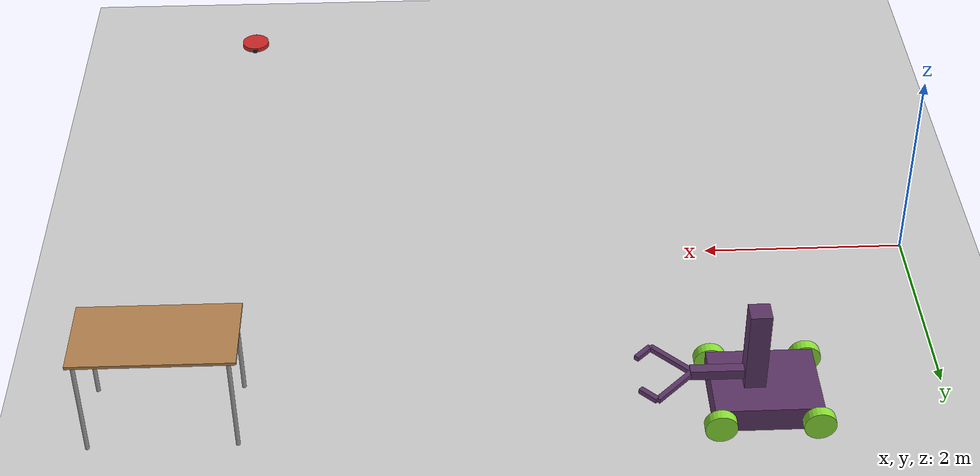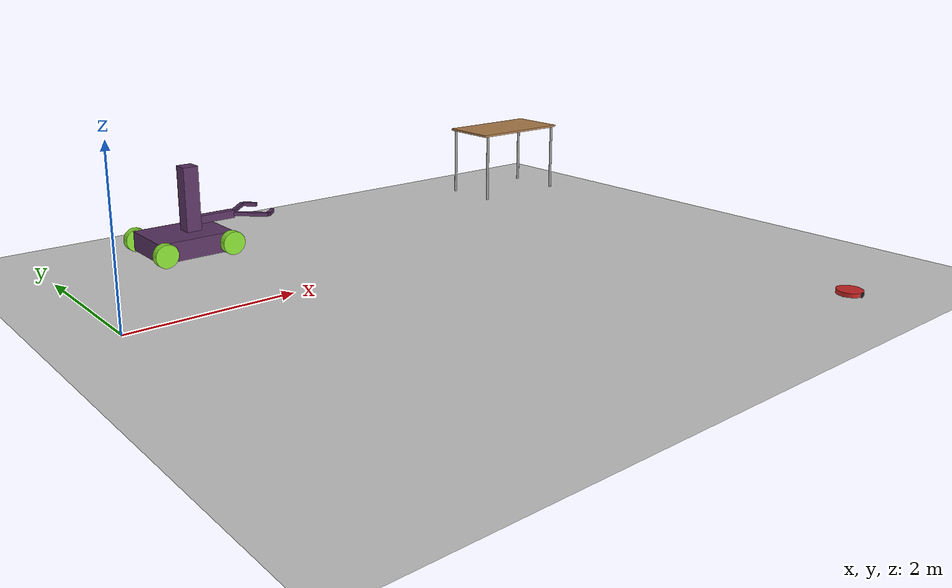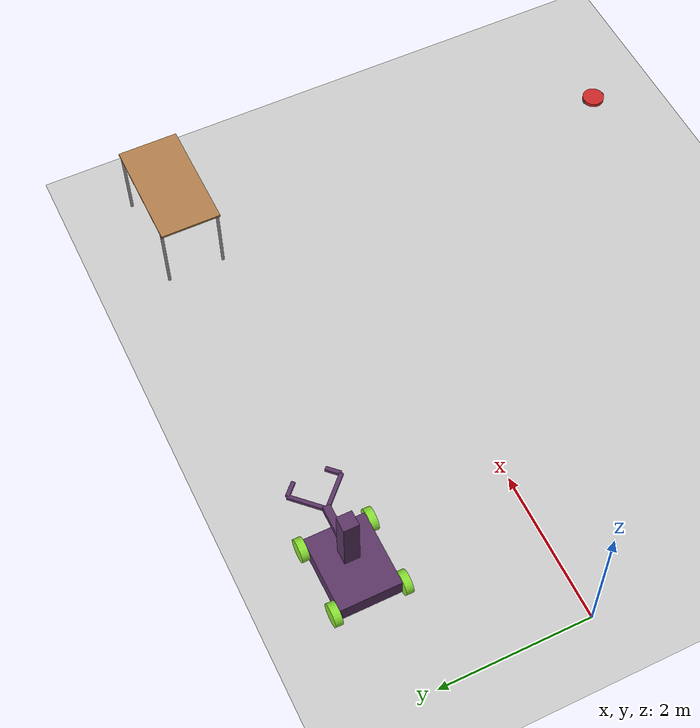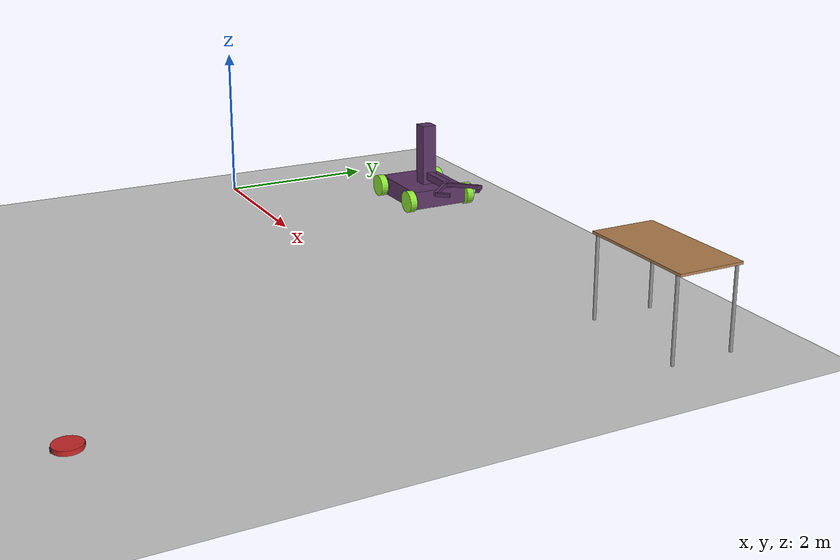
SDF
<sdf version="1.7">
 <world name="default">
  <model name="ground_plane">
   <static>1</static>
   <link name="ground_link">
    <collision name="collision">
     <geometry><plane><normal>0 0 1</normal><size>100 100</size></plane></geometry>
     <surface><friction><ode><mu>100</mu><mu2>50</mu2></ode></friction></surface>
    </collision>
    <visual name="visual">
     <cast_shadows>0</cast_shadows>
     <geometry><plane><normal>0 0 1</normal><size>100 100</size></plane></geometry>
     <material>
      <script><uri>file://media/materials/scripts/gazebo.material</uri><name>Gazebo/Grey</name></script>
     </material>
    </visual>
   </link>
  </model>
  <model name="CleanerBot">
   <link name="link_0">
    <inertial>
     <mass>1</mass>
     <inertia><ixx>0.145833</ixx><ixy>0</ixy><ixz>0</ixz><iyy>0.145833</iyy><iyz>0</iyz><izz>0.125</izz></inertia>
    </inertial>
    <pose>0 0 0.012 0 -0 0</pose>
    <visual name="visual">
     <geometry><cylinder><radius>0.15</radius><length>0.05</length></cylinder></geometry>
     <material>
      <lighting>1</lighting>
      <script><uri>file://media/materials/scripts/gazebo.material</uri><name>Gazebo/Red</name></script>
      <shader type="pixel"><normal_map>__default__</normal_map></shader>
      <ambient>0.8 0 0 1</ambient>
      <diffuse>0.7 0.7 0.7 1</diffuse>
      <specular>0.01 0.01 0.01 1</specular>
      <emissive>0 0 0 1</emissive>
     </material>
    </visual>
    <collision name="collision">
     <geometry><cylinder><radius>0.15</radius><length>0.05</length></cylinder></geometry>
     <surface>
      <friction>
       <ode><mu>1</mu><mu2>1</mu2><fdir1>0 0 0</fdir1><slip1>0</slip1><slip2>0</slip2></ode>
       <torsional>
        <coefficient>1</coefficient>
        <patch_radius>0</patch_radius>
        <surface_radius>0</surface_radius>
        <use_patch_radius>1</use_patch_radius>
        <ode><slip>0</slip></ode>
       </torsional>
      </friction>
      <bounce><restitution_coefficient>0</restitution_coefficient><threshold>1e+06</threshold></bounce>
      <contact>
       <collide_without_contact>0</collide_without_contact>
       <collide_without_contact_bitmask>1</collide_without_contact_bitmask>
       <collide_bitmask>1</collide_bitmask>
       <ode>
        <soft_cfm>0</soft_cfm>
        <soft_erp>0.2</soft_erp>
        <kp>1e+13</kp>
        <kd>1</kd>
        <max_vel>0.01</max_vel>
        <min_depth>0</min_depth>
       </ode>
       <bullet>
        <split_impulse>1</split_impulse>
        <split_impulse_penetration_threshold>-0.01</split_impulse_penetration_threshold>
        <soft_cfm>0</soft_cfm>
        <soft_erp>0.2</soft_erp>
        <kp>1e+13</kp>
        <kd>1</kd>
       </bullet>
      </contact>
     </surface>
    </collision>
   </link>
   <link name="link_1">
    <inertial>
     <mass>1</mass>
     <inertia><ixx>0.145833</ixx><ixy>0</ixy><ixz>0</ixz><iyy>0.145833</iyy><iyz>0</iyz><izz>0.125</izz></inertia>
    </inertial>
    <pose>0 0.15 0.007 1.5707 -0 0</pose>
    <visual name="visual">
     <geometry><cylinder><radius>0.03</radius><length>0.01</length></cylinder></geometry>
     <material>
      <lighting>1</lighting>
      <script><uri>file://media/materials/scripts/gazebo.material</uri><name>Gazebo/Black</name></script>
      <shader type="pixel"><normal_map>__default__</normal_map></shader>
      <ambient>0 0 0.8 1</ambient>
      <diffuse>0.7 0.7 0.7 1</diffuse>
      <specular>0.01 0.01 0.01 1</specular>
      <emissive>0 0 0 1</emissive>
     </material>
    </visual>
    <collision name="collision">
     <geometry><cylinder><radius>0.03</radius><length>0.01</length></cylinder></geometry>
     <surface>
      <friction>
       <ode><mu>1</mu><mu2>1</mu2><fdir1>0 0 0</fdir1><slip1>0</slip1><slip2>0</slip2></ode>
       <torsional>
        <coefficient>1</coefficient>
        <patch_radius>0</patch_radius>
        <surface_radius>0</surface_radius>
        <use_patch_radius>1</use_patch_radius>
        <ode><slip>0</slip></ode>
       </torsional>
      </friction>
      <bounce><restitution_coefficient>0</restitution_coefficient><threshold>1e+06</threshold></bounce>
      <contact>
       <collide_without_contact>0</collide_without_contact>
       <collide_without_contact_bitmask>1</collide_without_contact_bitmask>
       <collide_bitmask>1</collide_bitmask>
       <ode>
        <soft_cfm>0</soft_cfm>
        <soft_erp>0.2</soft_erp>
        <kp>1e+13</kp>
        <kd>1</kd>
        <max_vel>0.01</max_vel>
        <min_depth>0</min_depth>
       </ode>
       <bullet>
        <split_impulse>1</split_impulse>
        <split_impulse_penetration_threshold>-0.01</split_impulse_penetration_threshold>
        <soft_cfm>0</soft_cfm>
        <soft_erp>0.2</soft_erp>
        <kp>1e+13</kp>
        <kd>1</kd>
       </bullet>
      </contact>
     </surface>
    </collision>
   </link>
   <link name="link_1_clone">
    <inertial>
     <mass>1</mass>
     <inertia><ixx>0.145833</ixx><ixy>0</ixy><ixz>0</ixz><iyy>0.145833</iyy><iyz>0</iyz><izz>0.125</izz></inertia>
    </inertial>
    <pose>0 -0.15 0.007 1.5707 -0 0</pose>
    <visual name="visual">
     <geometry><cylinder><radius>0.03</radius><length>0.01</length></cylinder></geometry>
     <material>
      <lighting>1</lighting>
      <script><uri>file://media/materials/scripts/gazebo.material</uri><name>Gazebo/Black</name></script>
      <shader type="pixel"><normal_map>__default__</normal_map></shader>
      <ambient>0 0 0.8 1</ambient>
      <diffuse>0.7 0.7 0.7 1</diffuse>
      <specular>0.01 0.01 0.01 1</specular>
      <emissive>0 0 0 1</emissive>
     </material>
    </visual>
    <collision name="collision">
     <geometry><cylinder><radius>0.03</radius><length>0.01</length></cylinder></geometry>
     <surface>
      <friction>
       <ode><mu>1</mu><mu2>1</mu2><fdir1>0 0 0</fdir1><slip1>0</slip1><slip2>0</slip2></ode>
       <torsional>
        <coefficient>1</coefficient>
        <patch_radius>0</patch_radius>
        <surface_radius>0</surface_radius>
        <use_patch_radius>1</use_patch_radius>
        <ode><slip>0</slip></ode>
       </torsional>
      </friction>
      <bounce><restitution_coefficient>0</restitution_coefficient><threshold>1e+06</threshold></bounce>
      <contact>
       <collide_without_contact>0</collide_without_contact>
       <collide_without_contact_bitmask>1</collide_without_contact_bitmask>
       <collide_bitmask>1</collide_bitmask>
       <ode>
        <soft_cfm>0</soft_cfm>
        <soft_erp>0.2</soft_erp>
        <kp>1e+13</kp>
        <kd>1</kd>
        <max_vel>0.01</max_vel>
        <min_depth>0</min_depth>
       </ode>
       <bullet>
        <split_impulse>1</split_impulse>
        <split_impulse_penetration_threshold>-0.01</split_impulse_penetration_threshold>
        <soft_cfm>0</soft_cfm>
        <soft_erp>0.2</soft_erp>
        <kp>1e+13</kp>
        <kd>1</kd>
       </bullet>
      </contact>
     </surface>
    </collision>
   </link>
   <link name="link_2">
    <inertial>
     <mass>1</mass>
     <inertia><ixx>0.1</ixx><ixy>0</ixy><ixz>0</ixz><iyy>0.1</iyy><iyz>0</iyz><izz>0.1</izz></inertia>
    </inertial>
    <pose>0.13 0 -0.013 0 -0 0</pose>
    <visual name="visual">
     <geometry><sphere><radius>0.01</radius></sphere></geometry>
     <material>
      <lighting>1</lighting>
      <script><uri>file://media/materials/scripts/gazebo.material</uri><name>Gazebo/Grey</name></script>
      <shader type="pixel"><normal_map>__default__</normal_map></shader>
      <ambient>0.3 0.3 0.3 1</ambient>
      <diffuse>0.7 0.7 0.7 1</diffuse>
      <specular>0.01 0.01 0.01 1</specular>
      <emissive>0 0 0 1</emissive>
     </material>
    </visual>
    <collision name="collision">
     <geometry><sphere><radius>0.01</radius></sphere></geometry>
     <surface>
      <friction>
       <ode><mu>0</mu><mu2>0</mu2><fdir1>0 0 0</fdir1><slip1>0</slip1><slip2>0</slip2></ode>
       <torsional>
        <coefficient>1</coefficient>
        <patch_radius>0</patch_radius>
        <surface_radius>0</surface_radius>
        <use_patch_radius>1</use_patch_radius>
        <ode><slip>0</slip></ode>
       </torsional>
      </friction>
      <bounce><restitution_coefficient>0</restitution_coefficient><threshold>1e+06</threshold></bounce>
      <contact>
       <collide_without_contact>0</collide_without_contact>
       <collide_without_contact_bitmask>1</collide_without_contact_bitmask>
       <collide_bitmask>1</collide_bitmask>
       <ode>
        <soft_cfm>0</soft_cfm>
        <soft_erp>0.2</soft_erp>
        <kp>1e+13</kp>
        <kd>1</kd>
        <max_vel>0.01</max_vel>
        <min_depth>0</min_depth>
       </ode>
       <bullet>
        <split_impulse>1</split_impulse>
        <split_impulse_penetration_threshold>-0.01</split_impulse_penetration_threshold>
        <soft_cfm>0</soft_cfm>
        <soft_erp>0.2</soft_erp>
        <kp>1e+13</kp>
        <kd>1</kd>
       </bullet>
      </contact>
     </surface>
    </collision>
   </link>
   <link name="link_2_clone">
    <inertial>
     <mass>1</mass>
     <inertia><ixx>0.1</ixx><ixy>0</ixy><ixz>0</ixz><iyy>0.1</iyy><iyz>0</iyz><izz>0.1</izz></inertia>
    </inertial>
    <pose>-0.13 0 -0.013 0 -0 0</pose>
    <visual name="visual">
     <geometry><sphere><radius>0.01</radius></sphere></geometry>
     <material>
      <lighting>1</lighting>
      <script><uri>file://media/materials/scripts/gazebo.material</uri><name>Gazebo/Grey</name></script>
      <shader type="pixel"><normal_map>__default__</normal_map></shader>
      <ambient>0.3 0.3 0.3 1</ambient>
      <diffuse>0.7 0.7 0.7 1</diffuse>
      <specular>0.01 0.01 0.01 1</specular>
      <emissive>0 0 0 1</emissive>
     </material>
    </visual>
    <collision name="collision">
     <geometry><sphere><radius>0.01</radius></sphere></geometry>
     <surface>
      <friction>
       <ode><mu>0</mu><mu2>0</mu2><fdir1>0 0 0</fdir1><slip1>0</slip1><slip2>0</slip2></ode>
       <torsional>
        <coefficient>1</coefficient>
        <patch_radius>0</patch_radius>
        <surface_radius>0</surface_radius>
        <use_patch_radius>1</use_patch_radius>
        <ode><slip>0</slip></ode>
       </torsional>
      </friction>
      <bounce><restitution_coefficient>0</restitution_coefficient><threshold>1e+06</threshold></bounce>
      <contact>
       <collide_without_contact>0</collide_without_contact>
       <collide_without_contact_bitmask>1</collide_without_contact_bitmask>
       <collide_bitmask>1</collide_bitmask>
       <ode>
        <soft_cfm>0</soft_cfm>
        <soft_erp>0.2</soft_erp>
        <kp>1e+13</kp>
        <kd>1</kd>
        <max_vel>0.01</max_vel>
        <min_depth>0</min_depth>
       </ode>
       <bullet>
        <split_impulse>1</split_impulse>
        <split_impulse_penetration_threshold>-0.01</split_impulse_penetration_threshold>
        <soft_cfm>0</soft_cfm>
        <soft_erp>0.2</soft_erp>
        <kp>1e+13</kp>
        <kd>1</kd>
       </bullet>
      </contact>
     </surface>
    </collision>
   </link>
   <joint name="link_0_JOINT_1" type="revolute">
    <parent>link_0</parent>
    <child>link_1_clone</child>
    <axis>
     <xyz>0 0 1</xyz>
     <limit>
      <lower>-1.79769e+308</lower>
      <upper>1.79769e+308</upper>
      <effort>-1</effort>
      <velocity>-1</velocity>
     </limit>
     <dynamics>
      <spring_reference>0</spring_reference>
      <spring_stiffness>0</spring_stiffness>
      <damping>0</damping>
     </dynamics>
    </axis>
    <physics>
     <ode><limit><cfm>0</cfm><erp>0.2</erp></limit><suspension><cfm>0</cfm><erp>0.2</erp></suspension></ode>
    </physics>
   </joint>
   <joint name="link_0_JOINT_2" type="revolute">
    <parent>link_0</parent>
    <child>link_1</child>
    <axis>
     <xyz>0 0 1</xyz>
     <limit>
      <lower>-1.79769e+308</lower>
      <upper>1.79769e+308</upper>
      <effort>-1</effort>
      <velocity>-1</velocity>
     </limit>
     <dynamics>
      <spring_reference>0</spring_reference>
      <spring_stiffness>0</spring_stiffness>
      <damping>0</damping>
     </dynamics>
    </axis>
    <physics>
     <ode><limit><cfm>0</cfm><erp>0.2</erp></limit><suspension><cfm>0</cfm><erp>0.2</erp></suspension></ode>
    </physics>
   </joint>
   <joint name="link_0_JOINT_4" type="fixed">
    <parent>link_0</parent>
    <child>link_2</child>
    <physics>
     <ode><limit><cfm>0</cfm><erp>0.2</erp></limit><suspension><cfm>0</cfm><erp>0.2</erp></suspension></ode>
    </physics>
   </joint>
   <joint name="link_0_JOINT_5" type="fixed">
    <parent>link_0</parent>
    <child>link_2_clone</child>
    <physics>
     <ode><limit><cfm>0</cfm><erp>0.2</erp></limit><suspension><cfm>0</cfm><erp>0.2</erp></suspension></ode>
    </physics>
   </joint>
   <static>0</static>
   <pose>6.82843 -3.99994 0.022999 9e-06 -2e-06 -0.003466</pose>
  </model>
  <model name="GripperBot_0">
   <link name="link_1">
    <inertial>
     <mass>20</mass>
     <inertia>
      <ixx>0.885417</ixx>
      <ixy>0</ixy>
      <ixz>0</ixz>
      <iyy>0.885417</iyy>
      <iyz>0</iyz>
      <izz>1.66667</izz>
     </inertia>
    </inertial>
    <pose>0 -0 0.155 0 -0 0</pose>
    <visual name="visual">
     <geometry><box><size>1 0.8 0.25</size></box></geometry>
     <material>
      <lighting>1</lighting>
      <script><uri>file://media/materials/scripts/gazebo.material</uri><name>Gazebo/Grey</name></script>
      <shader type="pixel"><normal_map>__default__</normal_map></shader>
      <ambient>0.8 0 0 1</ambient>
      <diffuse>0.361 0.208 0.4 1</diffuse>
      <specular>0.961 0.475 0 1</specular>
      <emissive>0 0 0 1</emissive>
     </material>
    </visual>
    <collision name="collision">
     <geometry><box><size>1 0.8 0.25</size></box></geometry>
     <surface>
      <friction>
       <ode><mu>1</mu><mu2>1</mu2><fdir1>0 0 0</fdir1><slip1>0</slip1><slip2>0</slip2></ode>
       <torsional>
        <coefficient>1</coefficient>
        <patch_radius>0</patch_radius>
        <surface_radius>0</surface_radius>
        <use_patch_radius>1</use_patch_radius>
        <ode><slip>0</slip></ode>
       </torsional>
      </friction>
      <bounce><restitution_coefficient>0</restitution_coefficient><threshold>1e+06</threshold></bounce>
      <contact>
       <collide_without_contact>0</collide_without_contact>
       <collide_without_contact_bitmask>1</collide_without_contact_bitmask>
       <collide_bitmask>1</collide_bitmask>
       <ode>
        <soft_cfm>0</soft_cfm>
        <soft_erp>0.2</soft_erp>
        <kp>1e+13</kp>
        <kd>1</kd>
        <max_vel>0.01</max_vel>
        <min_depth>0</min_depth>
       </ode>
       <bullet>
        <split_impulse>1</split_impulse>
        <split_impulse_penetration_threshold>-0.01</split_impulse_penetration_threshold>
        <soft_cfm>0</soft_cfm>
        <soft_erp>0.2</soft_erp>
        <kp>1e+13</kp>
        <kd>1</kd>
       </bullet>
      </contact>
     </surface>
    </collision>
   </link>
   <link name="link_2_clone_1">
    <inertial>
     <mass>0.1</mass>
     <inertia><ixx>0.145833</ixx><ixy>0</ixy><ixz>0</ixz><iyy>0.145833</iyy><iyz>0</iyz><izz>0.125</izz></inertia>
    </inertial>
    <pose>0.45 -0.45 0.15 1.5707 -0 0</pose>
    <visual name="visual">
     <geometry><cylinder><radius>0.15</radius><length>0.1</length></cylinder></geometry>
     <material>
      <lighting>1</lighting>
      <script><uri>file://media/materials/scripts/gazebo.material</uri><name>Gazebo/Grey</name></script>
      <shader type="pixel"><normal_map>__default__</normal_map></shader>
      <ambient>0.541 0.886 0.204 1</ambient>
      <diffuse>0.7 0.7 0.7 1</diffuse>
      <specular>0.01 0.01 0.01 1</specular>
      <emissive>0 0 0 1</emissive>
     </material>
    </visual>
    <collision name="collision">
     <geometry><cylinder><radius>0.15</radius><length>0.1</length></cylinder></geometry>
     <surface>
      <friction>
       <ode><mu>1</mu><mu2>1</mu2><fdir1>0 0 0</fdir1><slip1>0</slip1><slip2>0</slip2></ode>
       <torsional>
        <coefficient>1</coefficient>
        <patch_radius>0</patch_radius>
        <surface_radius>0</surface_radius>
        <use_patch_radius>1</use_patch_radius>
        <ode><slip>0</slip></ode>
       </torsional>
      </friction>
      <bounce><restitution_coefficient>0</restitution_coefficient><threshold>1e+06</threshold></bounce>
      <contact>
       <collide_without_contact>0</collide_without_contact>
       <collide_without_contact_bitmask>1</collide_without_contact_bitmask>
       <collide_bitmask>1</collide_bitmask>
       <ode>
        <soft_cfm>0</soft_cfm>
        <soft_erp>0.2</soft_erp>
        <kp>1e+13</kp>
        <kd>1</kd>
        <max_vel>0.01</max_vel>
        <min_depth>0</min_depth>
       </ode>
       <bullet>
        <split_impulse>1</split_impulse>
        <split_impulse_penetration_threshold>-0.01</split_impulse_penetration_threshold>
        <soft_cfm>0</soft_cfm>
        <soft_erp>0.2</soft_erp>
        <kp>1e+13</kp>
        <kd>1</kd>
       </bullet>
      </contact>
     </surface>
    </collision>
   </link>
   <link name="link_2_clone_1_clone">
    <inertial>
     <mass>0.1</mass>
     <inertia><ixx>0.145833</ixx><ixy>0</ixy><ixz>0</ixz><iyy>0.145833</iyy><iyz>0</iyz><izz>0.125</izz></inertia>
    </inertial>
    <pose>0.45 0.45 0.15 1.5707 -0 0</pose>
    <visual name="visual">
     <geometry><cylinder><radius>0.15</radius><length>0.1</length></cylinder></geometry>
     <material>
      <lighting>1</lighting>
      <script><uri>file://media/materials/scripts/gazebo.material</uri><name>Gazebo/Grey</name></script>
      <shader type="pixel"><normal_map>__default__</normal_map></shader>
      <ambient>0.541 0.886 0.204 1</ambient>
      <diffuse>0.7 0.7 0.7 1</diffuse>
      <specular>0.01 0.01 0.01 1</specular>
      <emissive>0 0 0 1</emissive>
     </material>
    </visual>
    <collision name="collision">
     <geometry><cylinder><radius>0.15</radius><length>0.1</length></cylinder></geometry>
     <surface>
      <friction>
       <ode><mu>1</mu><mu2>1</mu2><fdir1>0 0 0</fdir1><slip1>0</slip1><slip2>0</slip2></ode>
       <torsional>
        <coefficient>1</coefficient>
        <patch_radius>0</patch_radius>
        <surface_radius>0</surface_radius>
        <use_patch_radius>1</use_patch_radius>
        <ode><slip>0</slip></ode>
       </torsional>
      </friction>
      <bounce><restitution_coefficient>0</restitution_coefficient><threshold>1e+06</threshold></bounce>
      <contact>
       <collide_without_contact>0</collide_without_contact>
       <collide_without_contact_bitmask>1</collide_without_contact_bitmask>
       <collide_bitmask>1</collide_bitmask>
       <ode>
        <soft_cfm>0</soft_cfm>
        <soft_erp>0.2</soft_erp>
        <kp>1e+13</kp>
        <kd>1</kd>
        <max_vel>0.01</max_vel>
        <min_depth>0</min_depth>
       </ode>
       <bullet>
        <split_impulse>1</split_impulse>
        <split_impulse_penetration_threshold>-0.01</split_impulse_penetration_threshold>
        <soft_cfm>0</soft_cfm>
        <soft_erp>0.2</soft_erp>
        <kp>1e+13</kp>
        <kd>1</kd>
       </bullet>
      </contact>
     </surface>
    </collision>
   </link>
   <link name="link_2_clone_1_clone_0">
    <inertial>
     <mass>0.1</mass>
     <inertia><ixx>0.145833</ixx><ixy>0</ixy><ixz>0</ixz><iyy>0.145833</iyy><iyz>0</iyz><izz>0.125</izz></inertia>
    </inertial>
    <pose>-0.45 -0.45 0.15 1.5707 -0 0</pose>
    <visual name="visual">
     <geometry><cylinder><radius>0.15</radius><length>0.1</length></cylinder></geometry>
     <material>
      <lighting>1</lighting>
      <script><uri>file://media/materials/scripts/gazebo.material</uri><name>Gazebo/Grey</name></script>
      <shader type="pixel"><normal_map>__default__</normal_map></shader>
      <ambient>0.541 0.886 0.204 1</ambient>
      <diffuse>0.7 0.7 0.7 1</diffuse>
      <specular>0.01 0.01 0.01 1</specular>
      <emissive>0 0 0 1</emissive>
     </material>
    </visual>
    <collision name="collision">
     <geometry><cylinder><radius>0.15</radius><length>0.1</length></cylinder></geometry>
     <surface>
      <friction>
       <ode><mu>1</mu><mu2>1</mu2><fdir1>0 0 0</fdir1><slip1>0</slip1><slip2>0</slip2></ode>
       <torsional>
        <coefficient>1</coefficient>
        <patch_radius>0</patch_radius>
        <surface_radius>0</surface_radius>
        <use_patch_radius>1</use_patch_radius>
        <ode><slip>0</slip></ode>
       </torsional>
      </friction>
      <bounce><restitution_coefficient>0</restitution_coefficient><threshold>1e+06</threshold></bounce>
      <contact>
       <collide_without_contact>0</collide_without_contact>
       <collide_without_contact_bitmask>1</collide_without_contact_bitmask>
       <collide_bitmask>1</collide_bitmask>
       <ode>
        <soft_cfm>0</soft_cfm>
        <soft_erp>0.2</soft_erp>
        <kp>1e+13</kp>
        <kd>1</kd>
        <max_vel>0.01</max_vel>
        <min_depth>0</min_depth>
       </ode>
       <bullet>
        <split_impulse>1</split_impulse>
        <split_impulse_penetration_threshold>-0.01</split_impulse_penetration_threshold>
        <soft_cfm>0</soft_cfm>
        <soft_erp>0.2</soft_erp>
        <kp>1e+13</kp>
        <kd>1</kd>
       </bullet>
      </contact>
     </surface>
    </collision>
   </link>
   <link name="link_2_clone_1_clone_clone">
    <inertial>
     <mass>0.1</mass>
     <inertia><ixx>0.145833</ixx><ixy>0</ixy><ixz>0</ixz><iyy>0.145833</iyy><iyz>0</iyz><izz>0.125</izz></inertia>
    </inertial>
    <pose>-0.45 0.45 0.15 1.5707 -0 0</pose>
    <visual name="visual">
     <geometry><cylinder><radius>0.15</radius><length>0.1</length></cylinder></geometry>
     <material>
      <lighting>1</lighting>
      <script><uri>file://media/materials/scripts/gazebo.material</uri><name>Gazebo/Grey</name></script>
      <shader type="pixel"><normal_map>__default__</normal_map></shader>
      <ambient>0.541 0.886 0.204 1</ambient>
      <diffuse>0.7 0.7 0.7 1</diffuse>
      <specular>0.01 0.01 0.01 1</specular>
      <emissive>0 0 0 1</emissive>
     </material>
    </visual>
    <collision name="collision">
     <geometry><cylinder><radius>0.15</radius><length>0.1</length></cylinder></geometry>
     <surface>
      <friction>
       <ode><mu>1</mu><mu2>1</mu2><fdir1>0 0 0</fdir1><slip1>0</slip1><slip2>0</slip2></ode>
       <torsional>
        <coefficient>1</coefficient>
        <patch_radius>0</patch_radius>
        <surface_radius>0</surface_radius>
        <use_patch_radius>1</use_patch_radius>
        <ode><slip>0</slip></ode>
       </torsional>
      </friction>
      <bounce><restitution_coefficient>0</restitution_coefficient><threshold>1e+06</threshold></bounce>
      <contact>
       <collide_without_contact>0</collide_without_contact>
       <collide_without_contact_bitmask>1</collide_without_contact_bitmask>
       <collide_bitmask>1</collide_bitmask>
       <ode>
        <soft_cfm>0</soft_cfm>
        <soft_erp>0.2</soft_erp>
        <kp>1e+13</kp>
        <kd>1</kd>
        <max_vel>0.01</max_vel>
        <min_depth>0</min_depth>
       </ode>
       <bullet>
        <split_impulse>1</split_impulse>
        <split_impulse_penetration_threshold>-0.01</split_impulse_penetration_threshold>
        <soft_cfm>0</soft_cfm>
        <soft_erp>0.2</soft_erp>
        <kp>1e+13</kp>
        <kd>1</kd>
       </bullet>
      </contact>
     </surface>
    </collision>
   </link>
   <link name="link_3">
    <inertial>
     <mass>0.1</mass>
     <inertia>
      <ixx>0.166667</ixx>
      <ixy>0</ixy>
      <ixz>0</ixz>
      <iyy>0.166667</iyy>
      <iyz>0</iyz>
      <izz>0.166667</izz>
     </inertia>
    </inertial>
    <pose>0.102445 -0.000668 0.620289 0 -0 0</pose>
    <visual name="visual">
     <geometry><box><size>0.2 0.2 1</size></box></geometry>
     <material>
      <lighting>1</lighting>
      <script><uri>file://media/materials/scripts/gazebo.material</uri><name>Gazebo/Grey</name></script>
      <shader type="pixel"><normal_map>__default__</normal_map></shader>
      <ambient>0.361 0.208 0.4 1</ambient>
      <diffuse>0.7 0.7 0.7 1</diffuse>
      <specular>0.01 0.01 0.01 1</specular>
      <emissive>0 0 0 1</emissive>
     </material>
    </visual>
    <collision name="collision">
     <geometry><box><size>0.2 0.2 1</size></box></geometry>
     <surface>
      <friction>
       <ode><mu>1</mu><mu2>1</mu2><fdir1>0 0 0</fdir1><slip1>0</slip1><slip2>0</slip2></ode>
       <torsional>
        <coefficient>1</coefficient>
        <patch_radius>0</patch_radius>
        <surface_radius>0</surface_radius>
        <use_patch_radius>1</use_patch_radius>
        <ode><slip>0</slip></ode>
       </torsional>
      </friction>
      <bounce><restitution_coefficient>0</restitution_coefficient><threshold>1e+06</threshold></bounce>
      <contact>
       <collide_without_contact>0</collide_without_contact>
       <collide_without_contact_bitmask>1</collide_without_contact_bitmask>
       <collide_bitmask>1</collide_bitmask>
       <ode>
        <soft_cfm>0</soft_cfm>
        <soft_erp>0.2</soft_erp>
        <kp>1e+13</kp>
        <kd>1</kd>
        <max_vel>0.01</max_vel>
        <min_depth>0</min_depth>
       </ode>
       <bullet>
        <split_impulse>1</split_impulse>
        <split_impulse_penetration_threshold>-0.01</split_impulse_penetration_threshold>
        <soft_cfm>0</soft_cfm>
        <soft_erp>0.2</soft_erp>
        <kp>1e+13</kp>
        <kd>1</kd>
       </bullet>
      </contact>
     </surface>
    </collision>
   </link>
   <link name="link_4">
    <inertial>
     <mass>0.1</mass>
     <inertia>
      <ixx>0.166667</ixx>
      <ixy>0</ixy>
      <ixz>0</ixz>
      <iyy>0.166667</iyy>
      <iyz>0</iyz>
      <izz>0.166667</izz>
     </inertia>
    </inertial>
    <pose>0.45 0 0.4 0 -0 0</pose>
    <visual name="visual">
     <geometry><box><size>0.5 0.1 0.1</size></box></geometry>
     <material>
      <lighting>1</lighting>
      <script><uri>file://media/materials/scripts/gazebo.material</uri><name>Gazebo/Grey</name></script>
      <shader type="pixel"><normal_map>__default__</normal_map></shader>
      <ambient>0.361 0.208 0.4 1</ambient>
      <diffuse>0.7 0.7 0.7 1</diffuse>
      <specular>0.01 0.01 0.01 1</specular>
      <emissive>0 0 0 1</emissive>
     </material>
    </visual>
    <collision name="collision">
     <geometry><box><size>0.5 0.1 0.1</size></box></geometry>
     <surface>
      <friction>
       <ode><mu>1</mu><mu2>1</mu2><fdir1>0 0 0</fdir1><slip1>0</slip1><slip2>0</slip2></ode>
       <torsional>
        <coefficient>1</coefficient>
        <patch_radius>0</patch_radius>
        <surface_radius>0</surface_radius>
        <use_patch_radius>1</use_patch_radius>
        <ode><slip>0</slip></ode>
       </torsional>
      </friction>
      <bounce><restitution_coefficient>0</restitution_coefficient><threshold>1e+06</threshold></bounce>
      <contact>
       <collide_without_contact>0</collide_without_contact>
       <collide_without_contact_bitmask>1</collide_without_contact_bitmask>
       <collide_bitmask>1</collide_bitmask>
       <ode>
        <soft_cfm>0</soft_cfm>
        <soft_erp>0.2</soft_erp>
        <kp>1e+13</kp>
        <kd>1</kd>
        <max_vel>0.01</max_vel>
        <min_depth>0</min_depth>
       </ode>
       <bullet>
        <split_impulse>1</split_impulse>
        <split_impulse_penetration_threshold>-0.01</split_impulse_penetration_threshold>
        <soft_cfm>0</soft_cfm>
        <soft_erp>0.2</soft_erp>
        <kp>1e+13</kp>
        <kd>1</kd>
       </bullet>
      </contact>
     </surface>
    </collision>
   </link>
   <link name="link_4_clone">
    <inertial>
     <mass>0.1</mass>
     <inertia>
      <ixx>0.166667</ixx>
      <ixy>0</ixy>
      <ixz>0</ixz>
      <iyy>0.166667</iyy>
      <iyz>0</iyz>
      <izz>0.166667</izz>
     </inertia>
    </inertial>
    <pose>0.85 -0.17677 0.4 0 0 -0.78539</pose>
    <visual name="visual">
     <geometry><box><size>0.5 0.05 0.05</size></box></geometry>
     <material>
      <lighting>1</lighting>
      <script><uri>file://media/materials/scripts/gazebo.material</uri><name>Gazebo/Grey</name></script>
      <shader type="pixel"><normal_map>__default__</normal_map></shader>
      <ambient>0.361 0.208 0.4 1</ambient>
      <diffuse>0.7 0.7 0.7 1</diffuse>
      <specular>0.01 0.01 0.01 1</specular>
      <emissive>0 0 0 1</emissive>
     </material>
    </visual>
    <collision name="collision">
     <geometry><box><size>0.5 0.05 0.05</size></box></geometry>
     <surface>
      <friction>
       <ode><mu>1</mu><mu2>1</mu2><fdir1>0 0 0</fdir1><slip1>0</slip1><slip2>0</slip2></ode>
       <torsional>
        <coefficient>1</coefficient>
        <patch_radius>0</patch_radius>
        <surface_radius>0</surface_radius>
        <use_patch_radius>1</use_patch_radius>
        <ode><slip>0</slip></ode>
       </torsional>
      </friction>
      <bounce><restitution_coefficient>0</restitution_coefficient><threshold>1e+06</threshold></bounce>
      <contact>
       <collide_without_contact>0</collide_without_contact>
       <collide_without_contact_bitmask>1</collide_without_contact_bitmask>
       <collide_bitmask>1</collide_bitmask>
       <ode>
        <soft_cfm>0</soft_cfm>
        <soft_erp>0.2</soft_erp>
        <kp>1e+13</kp>
        <kd>1</kd>
        <max_vel>0.01</max_vel>
        <min_depth>0</min_depth>
       </ode>
       <bullet>
        <split_impulse>1</split_impulse>
        <split_impulse_penetration_threshold>-0.01</split_impulse_penetration_threshold>
        <soft_cfm>0</soft_cfm>
        <soft_erp>0.2</soft_erp>
        <kp>1e+13</kp>
        <kd>1</kd>
       </bullet>
      </contact>
     </surface>
    </collision>
   </link>
   <link name="link_4_clone_clone">
    <inertial>
     <mass>0.1</mass>
     <inertia>
      <ixx>0.166667</ixx>
      <ixy>0</ixy>
      <ixz>0</ixz>
      <iyy>0.166667</iyy>
      <iyz>0</iyz>
      <izz>0.166667</izz>
     </inertia>
    </inertial>
    <pose>0.85 0.17677 0.4 0 -0 0.78539</pose>
    <visual name="visual">
     <geometry><box><size>0.5 0.05 0.05</size></box></geometry>
     <material>
      <lighting>1</lighting>
      <script><uri>file://media/materials/scripts/gazebo.material</uri><name>Gazebo/Grey</name></script>
      <shader type="pixel"><normal_map>__default__</normal_map></shader>
      <ambient>0.361 0.208 0.4 1</ambient>
      <diffuse>0.7 0.7 0.7 1</diffuse>
      <specular>0.01 0.01 0.01 1</specular>
      <emissive>0 0 0 1</emissive>
     </material>
    </visual>
    <collision name="collision">
     <geometry><box><size>0.5 0.05 0.05</size></box></geometry>
     <surface>
      <friction>
       <ode><mu>1</mu><mu2>1</mu2><fdir1>0 0 0</fdir1><slip1>0</slip1><slip2>0</slip2></ode>
       <torsional>
        <coefficient>1</coefficient>
        <patch_radius>0</patch_radius>
        <surface_radius>0</surface_radius>
        <use_patch_radius>1</use_patch_radius>
        <ode><slip>0</slip></ode>
       </torsional>
      </friction>
      <bounce><restitution_coefficient>0</restitution_coefficient><threshold>1e+06</threshold></bounce>
      <contact>
       <collide_without_contact>0</collide_without_contact>
       <collide_without_contact_bitmask>1</collide_without_contact_bitmask>
       <collide_bitmask>1</collide_bitmask>
       <ode>
        <soft_cfm>0</soft_cfm>
        <soft_erp>0.2</soft_erp>
        <kp>1e+13</kp>
        <kd>1</kd>
        <max_vel>0.01</max_vel>
        <min_depth>0</min_depth>
       </ode>
       <bullet>
        <split_impulse>1</split_impulse>
        <split_impulse_penetration_threshold>-0.01</split_impulse_penetration_threshold>
        <soft_cfm>0</soft_cfm>
        <soft_erp>0.2</soft_erp>
        <kp>1e+13</kp>
        <kd>1</kd>
       </bullet>
      </contact>
     </surface>
    </collision>
   </link>
   <link name="link_4_clone_clone_0">
    <inertial>
     <mass>0.1</mass>
     <inertia>
      <ixx>0.166667</ixx>
      <ixy>0</ixy>
      <ixz>0</ixz>
      <iyy>0.166667</iyy>
      <iyz>0</iyz>
      <izz>0.166667</izz>
     </inertia>
    </inertial>
    <pose>1.1 0.28 0.4 0 0 -0.78539</pose>
    <visual name="visual">
     <geometry><box><size>0.2 0.05 0.05</size></box></geometry>
     <material>
      <lighting>1</lighting>
      <script><uri>file://media/materials/scripts/gazebo.material</uri><name>Gazebo/Grey</name></script>
      <shader type="pixel"><normal_map>__default__</normal_map></shader>
      <ambient>0.361 0.208 0.4 1</ambient>
      <diffuse>0.7 0.7 0.7 1</diffuse>
      <specular>0.01 0.01 0.01 1</specular>
      <emissive>0 0 0 1</emissive>
     </material>
    </visual>
    <collision name="collision">
     <geometry><box><size>0.2 0.05 0.05</size></box></geometry>
     <surface>
      <friction>
       <ode><mu>1</mu><mu2>1</mu2><fdir1>0 0 0</fdir1><slip1>0</slip1><slip2>0</slip2></ode>
       <torsional>
        <coefficient>1</coefficient>
        <patch_radius>0</patch_radius>
        <surface_radius>0</surface_radius>
        <use_patch_radius>1</use_patch_radius>
        <ode><slip>0</slip></ode>
       </torsional>
      </friction>
      <bounce><restitution_coefficient>0</restitution_coefficient><threshold>1e+06</threshold></bounce>
      <contact>
       <collide_without_contact>0</collide_without_contact>
       <collide_without_contact_bitmask>1</collide_without_contact_bitmask>
       <collide_bitmask>1</collide_bitmask>
       <ode>
        <soft_cfm>0</soft_cfm>
        <soft_erp>0.2</soft_erp>
        <kp>1e+13</kp>
        <kd>1</kd>
        <max_vel>0.01</max_vel>
        <min_depth>0</min_depth>
       </ode>
       <bullet>
        <split_impulse>1</split_impulse>
        <split_impulse_penetration_threshold>-0.01</split_impulse_penetration_threshold>
        <soft_cfm>0</soft_cfm>
        <soft_erp>0.2</soft_erp>
        <kp>1e+13</kp>
        <kd>1</kd>
       </bullet>
      </contact>
     </surface>
    </collision>
   </link>
   <link name="link_4_clone_clone_clone">
    <inertial>
     <mass>0.1</mass>
     <inertia>
      <ixx>0.166667</ixx>
      <ixy>0</ixy>
      <ixz>0</ixz>
      <iyy>0.166667</iyy>
      <iyz>0</iyz>
      <izz>0.166667</izz>
     </inertia>
    </inertial>
    <pose>1.1 -0.28 0.4 0 -0 0.78539</pose>
    <visual name="visual">
     <geometry><box><size>0.2 0.05 0.05</size></box></geometry>
     <material>
      <lighting>1</lighting>
      <script><uri>file://media/materials/scripts/gazebo.material</uri><name>Gazebo/Grey</name></script>
      <shader type="pixel"><normal_map>__default__</normal_map></shader>
      <ambient>0.361 0.208 0.4 1</ambient>
      <diffuse>0.7 0.7 0.7 1</diffuse>
      <specular>0.01 0.01 0.01 1</specular>
      <emissive>0 0 0 1</emissive>
     </material>
    </visual>
    <collision name="collision">
     <geometry><box><size>0.2 0.05 0.05</size></box></geometry>
     <surface>
      <friction>
       <ode><mu>1</mu><mu2>1</mu2><fdir1>0 0 0</fdir1><slip1>0</slip1><slip2>0</slip2></ode>
       <torsional>
        <coefficient>1</coefficient>
        <patch_radius>0</patch_radius>
        <surface_radius>0</surface_radius>
        <use_patch_radius>1</use_patch_radius>
        <ode><slip>0</slip></ode>
       </torsional>
      </friction>
      <bounce><restitution_coefficient>0</restitution_coefficient><threshold>1e+06</threshold></bounce>
      <contact>
       <collide_without_contact>0</collide_without_contact>
       <collide_without_contact_bitmask>1</collide_without_contact_bitmask>
       <collide_bitmask>1</collide_bitmask>
       <ode>
        <soft_cfm>0</soft_cfm>
        <soft_erp>0.2</soft_erp>
        <kp>1e+13</kp>
        <kd>1</kd>
        <max_vel>0.01</max_vel>
        <min_depth>0</min_depth>
       </ode>
       <bullet>
        <split_impulse>1</split_impulse>
        <split_impulse_penetration_threshold>-0.01</split_impulse_penetration_threshold>
        <soft_cfm>0</soft_cfm>
        <soft_erp>0.2</soft_erp>
        <kp>1e+13</kp>
        <kd>1</kd>
       </bullet>
      </contact>
     </surface>
    </collision>
   </link>
   <joint name="link_1_JOINT_0" type="revolute">
    <parent>link_1</parent>
    <child>link_2_clone_1</child>
    <axis>
     <xyz>0 0 1</xyz>
     <limit><lower>-1.79769e+308</lower><upper>1.79769e+308</upper></limit>
     <dynamics>
      <spring_reference>0</spring_reference>
      <spring_stiffness>0</spring_stiffness>
      <damping>0</damping>
     </dynamics>
    </axis>
    <physics>
     <ode><limit><cfm>0</cfm><erp>0.2</erp></limit><suspension><cfm>0</cfm><erp>0.2</erp></suspension></ode>
    </physics>
   </joint>
   <joint name="link_1_JOINT_1" type="revolute">
    <parent>link_1</parent>
    <child>link_2_clone_1_clone_0</child>
    <axis>
     <xyz>0 0 1</xyz>
     <limit><lower>-1.79769e+308</lower><upper>1.79769e+308</upper></limit>
     <dynamics>
      <spring_reference>0</spring_reference>
      <spring_stiffness>0</spring_stiffness>
      <damping>0</damping>
     </dynamics>
    </axis>
    <physics>
     <ode><limit><cfm>0</cfm><erp>0.2</erp></limit><suspension><cfm>0</cfm><erp>0.2</erp></suspension></ode>
    </physics>
   </joint>
   <joint name="link_1_JOINT_2" type="revolute">
    <parent>link_1</parent>
    <child>link_2_clone_1_clone_clone</child>
    <axis>
     <xyz>-0 -0 -1</xyz>
     <limit><lower>-1.79769e+308</lower><upper>1.79769e+308</upper></limit>
     <dynamics>
      <spring_reference>0</spring_reference>
      <spring_stiffness>0</spring_stiffness>
      <damping>0</damping>
     </dynamics>
    </axis>
    <physics>
     <ode><limit><cfm>0</cfm><erp>0.2</erp></limit><suspension><cfm>0</cfm><erp>0.2</erp></suspension></ode>
    </physics>
   </joint>
   <joint name="link_1_JOINT_3" type="revolute">
    <parent>link_1</parent>
    <child>link_2_clone_1_clone</child>
    <axis>
     <xyz>-0 -0 -1</xyz>
     <limit><lower>-1.79769e+308</lower><upper>1.79769e+308</upper></limit>
     <dynamics>
      <spring_reference>0</spring_reference>
      <spring_stiffness>0</spring_stiffness>
      <damping>0</damping>
     </dynamics>
    </axis>
    <physics>
     <ode><limit><cfm>0</cfm><erp>0.2</erp></limit><suspension><cfm>0</cfm><erp>0.2</erp></suspension></ode>
    </physics>
   </joint>
   <joint name="link_1_JOINT_4" type="fixed">
    <parent>link_1</parent>
    <child>link_3</child>
    <physics>
     <ode><limit><cfm>0</cfm><erp>0.2</erp></limit><suspension><cfm>0</cfm><erp>0.2</erp></suspension></ode>
    </physics>
   </joint>
   <joint name="link_3_JOINT_5" type="prismatic">
    <parent>link_3</parent>
    <child>link_4</child>
    <axis>
     <xyz>0 0 1</xyz>
     <limit><lower>0</lower><upper>0.6</upper></limit>
     <dynamics>
      <spring_reference>0</spring_reference>
      <spring_stiffness>0</spring_stiffness>
      <damping>0</damping>
      <friction>0</friction>
     </dynamics>
    </axis>
    <physics>
     <ode><limit><cfm>0</cfm><erp>0.2</erp></limit><suspension><cfm>0</cfm><erp>0.2</erp></suspension></ode>
    </physics>
   </joint>
   <joint name="link_4_JOINT_7" type="revolute">
    <parent>link_4</parent>
    <child>link_4_clone</child>
    <pose>-0.25 0 0 0 -0 0</pose>
    <axis>
     <xyz>0 0 1</xyz>
     <limit><lower>-0.45</lower><upper>0.45</upper></limit>
     <dynamics>
      <spring_reference>0</spring_reference>
      <spring_stiffness>0</spring_stiffness>
      <damping>0</damping>
     </dynamics>
    </axis>
    <physics>
     <ode><limit><cfm>0</cfm><erp>0.2</erp></limit><suspension><cfm>0</cfm><erp>0.2</erp></suspension></ode>
    </physics>
   </joint>
   <joint name="link_4_JOINT_8" type="revolute">
    <parent>link_4</parent>
    <child>link_4_clone_clone</child>
    <pose>-0.25 0 0 0 -0 0</pose>
    <axis>
     <xyz>0 0 1</xyz>
     <limit><lower>-0.45</lower><upper>0.45</upper></limit>
     <dynamics>
      <spring_reference>0</spring_reference>
      <spring_stiffness>0</spring_stiffness>
      <damping>0</damping>
     </dynamics>
    </axis>
    <physics>
     <ode><limit><cfm>0</cfm><erp>0.2</erp></limit><suspension><cfm>0</cfm><erp>0.2</erp></suspension></ode>
    </physics>
   </joint>
   <joint name="link_4_clone_JOINT_10" type="revolute">
    <parent>link_4_clone</parent>
    <child>link_4_clone_clone_clone</child>
    <pose>-0.1 0 0 0 -0 0</pose>
    <axis>
     <xyz>0 0 1</xyz>
     <limit><lower>-0.45</lower><upper>0.45</upper></limit>
     <dynamics>
      <spring_reference>0</spring_reference>
      <spring_stiffness>0</spring_stiffness>
      <damping>0</damping>
     </dynamics>
    </axis>
    <physics>
     <ode><limit><cfm>0</cfm><erp>0.2</erp></limit><suspension><cfm>0</cfm><erp>0.2</erp></suspension></ode>
    </physics>
   </joint>
   <joint name="link_4_clone_clone_JOINT_9" type="revolute">
    <parent>link_4_clone_clone</parent>
    <child>link_4_clone_clone_0</child>
    <pose>-0.1 0 0 0 -0 0</pose>
    <axis>
     <xyz>0 0 1</xyz>
     <limit><lower>-0.45</lower><upper>0.45</upper></limit>
     <dynamics>
      <spring_reference>0</spring_reference>
      <spring_stiffness>0</spring_stiffness>
      <damping>0</damping>
     </dynamics>
    </axis>
    <physics>
     <ode><limit><cfm>0</cfm><erp>0.2</erp></limit><suspension><cfm>0</cfm><erp>0.2</erp></suspension></ode>
    </physics>
   </joint>
   <static>0</static>
   <pose>1.72462 2.22539 -1.5e-05 5e-06 3e-06 0.003458</pose>
  </model>
  <model name="table">
   <static>1</static>
   <link name="table_link">
    <collision name="table_collision">
     <pose>0 0 1 0 -0 0</pose>
     <geometry><box><size>1.5 0.8 0.03</size></box></geometry>
     <surface><friction><ode><mu>0.6</mu><mu2>0.6</mu2></ode></friction></surface>
    </collision>
    <visual name="table_visual1">
     <pose>0 0 1 0 -0 0</pose>
     <geometry><box><size>1.5 0.8 0.03</size></box></geometry>
     <material>
      <script><uri>file://media/materials/scripts/gazebo.material</uri><name>Gazebo/Wood</name></script>
     </material>
    </visual>
    <collision name="front_left_leg_collision">
     <pose>0.68 0.38 0.5 0 -0 0</pose>
     <geometry><cylinder><radius>0.02</radius><length>1</length></cylinder></geometry>
    </collision>
    <visual name="front_left_leg_visual">
     <pose>0.68 0.38 0.5 0 -0 0</pose>
     <geometry><cylinder><radius>0.02</radius><length>1</length></cylinder></geometry>
     <material>
      <script><uri>file://media/materials/scripts/gazebo.material</uri><name>Gazebo/Grey</name></script>
     </material>
    </visual>
    <collision name="front_right_leg_collision">
     <pose>0.68 -0.38 0.5 0 -0 0</pose>
     <geometry><cylinder><radius>0.02</radius><length>1</length></cylinder></geometry>
    </collision>
    <visual name="front_right_leg_visual">
     <pose>0.68 -0.38 0.5 0 -0 0</pose>
     <geometry><cylinder><radius>0.02</radius><length>1</length></cylinder></geometry>
     <material>
      <script><uri>file://media/materials/scripts/gazebo.material</uri><name>Gazebo/Grey</name></script>
     </material>
    </visual>
    <collision name="back_right_leg_collision">
     <pose>-0.68 -0.38 0.5 0 -0 0</pose>
     <geometry><cylinder><radius>0.02</radius><length>1</length></cylinder></geometry>
    </collision>
    <visual name="back_right_leg_visual">
     <pose>-0.68 -0.38 0.5 0 -0 0</pose>
     <geometry><cylinder><radius>0.02</radius><length>1</length></cylinder></geometry>
     <material>
      <script><uri>file://media/materials/scripts/gazebo.material</uri><name>Gazebo/Grey</name></script>
     </material>
    </visual>
    <collision name="back_left_leg_collision">
     <pose>-0.68 0.38 0.5 0 -0 0</pose>
     <geometry><cylinder><radius>0.02</radius><length>1</length></cylinder></geometry>
    </collision>
    <visual name="back_left_leg_visual">
     <pose>-0.68 0.38 0.5 0 -0 0</pose>
     <geometry><cylinder><radius>0.02</radius><length>1</length></cylinder></geometry>
     <material>
      <script><uri>file://media/materials/scripts/gazebo.material</uri><name>Gazebo/Grey</name></script>
     </material>
    </visual>
   </link>
   <pose>7.22859 2.20352 0 0 -0 0</pose>
  </model>
 </world>
</sdf>
